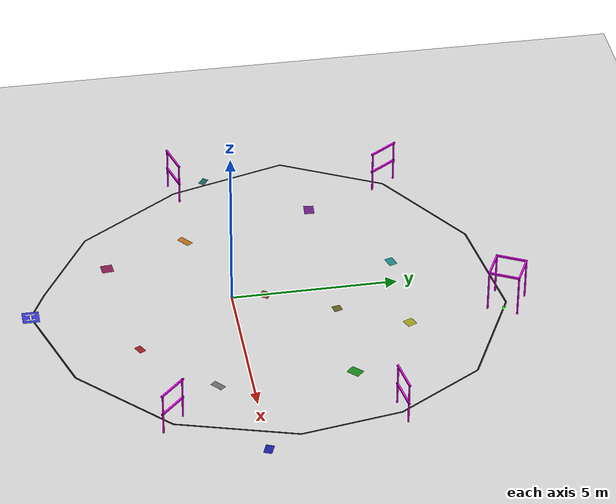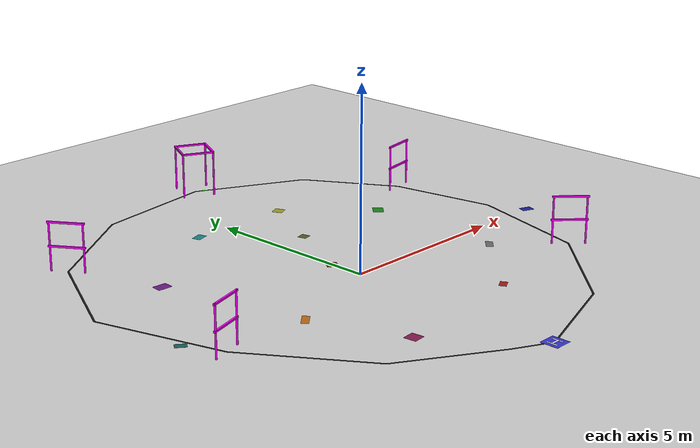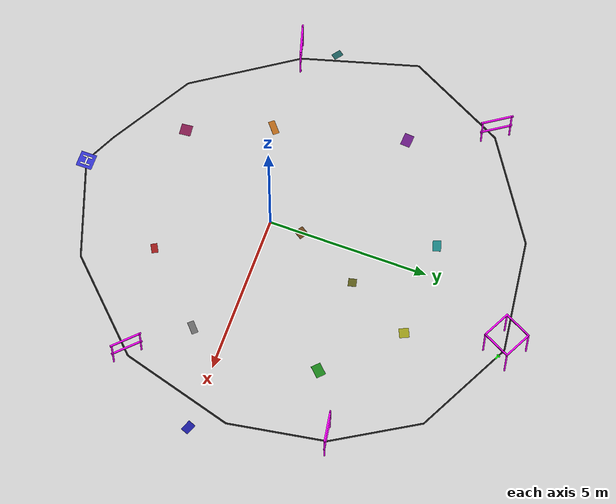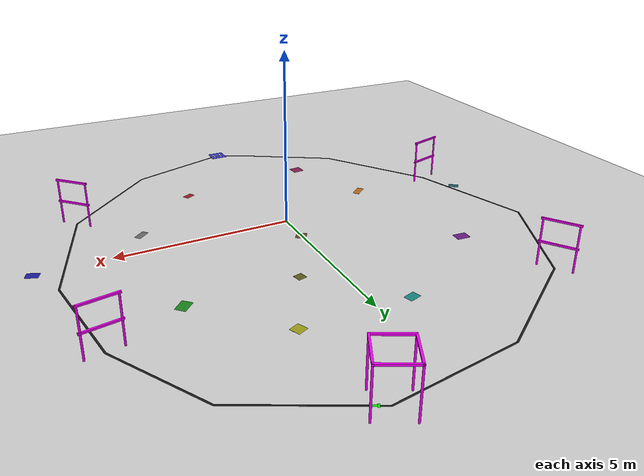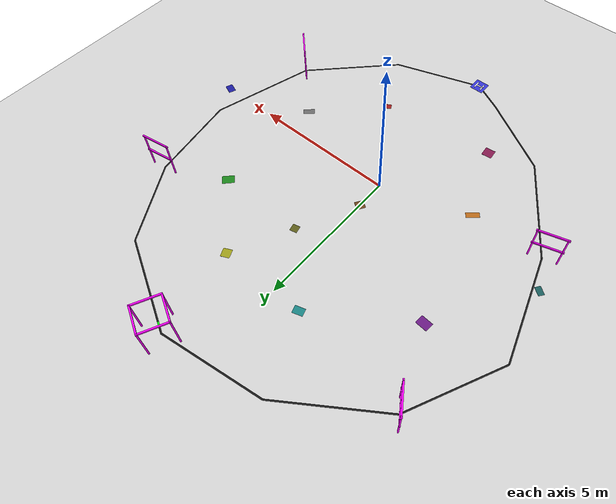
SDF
<?xml version="1.0" ?>
<sdf version="1.7">
  <world name="fira_autonomous_race">

    <plugin filename="gz-sim-physics-system" name="gz::sim::systems::Physics"/>
    <plugin filename="gz-sim-user-commands-system" name="gz::sim::systems::UserCommands"/>
    <plugin filename="gz-sim-scene-broadcaster-system" name="gz::sim::systems::SceneBroadcaster"/>
    <plugin filename="gz-sim-sensors-system" name="gz::sim::systems::Sensors">
      <render_engine>ogre2</render_engine>
    </plugin>

    <physics name="4ms" type="ode">
      <max_step_size>0.004</max_step_size>
      <real_time_factor>1.0</real_time_factor>
      <real_time_update_rate>250</real_time_update_rate>
    </physics>

    <scene>
      <ambient>0.8 0.8 0.8 1</ambient>
      <background>0.2 0.2 0.3 1</background>
      <shadows>true</shadows>
    </scene>

    <spherical_coordinates>
      <surface_model>EARTH_WGS84</surface_model>
      <world_frame_orientation>ENU</world_frame_orientation>
      <latitude_deg>0.0</latitude_deg>
      <longitude_deg>0.0</longitude_deg>
      <elevation>0.0</elevation>
      <heading_deg>0.0</heading_deg>
    </spherical_coordinates>

    <!-- Indoor arena lighting -->
    <light type="directional" name="overhead">
      <cast_shadows>true</cast_shadows>
      <pose>0 0 12 0 0 0</pose>
      <diffuse>0.85 0.85 0.85 1</diffuse>
      <specular>0.3 0.3 0.3 1</specular>
      <direction>-0.3 0.1 -0.9</direction>
    </light>

    <light type="point" name="fill_1">
      <pose>5 5 8 0 0 0</pose>
      <diffuse>0.6 0.6 0.6 1</diffuse>
      <attenuation><range>40</range><constant>0.5</constant></attenuation>
    </light>

    <light type="point" name="fill_2">
      <pose>-5 -5 8 0 0 0</pose>
      <diffuse>0.6 0.6 0.6 1</diffuse>
      <attenuation><range>40</range><constant>0.5</constant></attenuation>
    </light>

    <!-- Ground plane: light gray for high contrast with dark guide line -->
    <model name="ground_plane">
      <static>true</static>
      <link name="link">
        <collision name="collision">
          <geometry><plane><normal>0 0 1</normal><size>30 30</size></plane></geometry>
        </collision>
        <visual name="visual">
          <geometry><plane><normal>0 0 1</normal><size>30 30</size></plane></geometry>
          <material>
            <ambient>0.75 0.75 0.75 1</ambient>
            <diffuse>0.8 0.8 0.8 1</diffuse>
            <specular>0.2 0.2 0.2 1</specular>
          </material>
        </visual>
      </link>
    </model>

    <!-- TAKEOFF / LANDING PAD: 0.5x0.5m blue H           -->
    <!-- Position: (0, -6) at track start/finish           -->
    <model name="race_pad">
      <static>true</static>
      <pose>0 -6 0.005 0 0 0</pose>
      <link name="link">
        <visual name="pad_base">
          <geometry><box><size>0.5 0.5 0.002</size></box></geometry>
          <material><ambient>0.1 0.1 0.7 1</ambient><diffuse>0.2 0.2 0.8 1</diffuse></material>
        </visual>
        <visual name="h_left">
          <pose>-0.12 0 0.002 0 0 0</pose>
          <geometry><box><size>0.05 0.3 0.001</size></box></geometry>
          <material><ambient>1 1 1 1</ambient><diffuse>1 1 1 1</diffuse></material>
        </visual>
        <visual name="h_right">
          <pose>0.12 0 0.002 0 0 0</pose>
          <geometry><box><size>0.05 0.3 0.001</size></box></geometry>
          <material><ambient>1 1 1 1</ambient><diffuse>1 1 1 1</diffuse></material>
        </visual>
        <visual name="h_mid">
          <pose>0 0 0.002 0 0 0</pose>
          <geometry><box><size>0.3 0.05 0.001</size></box></geometry>
          <material><ambient>1 1 1 1</ambient><diffuse>1 1 1 1</diffuse></material>
        </visual>
        <collision name="col"><geometry><box><size>0.5 0.5 0.01</size></box></geometry></collision>
      </link>
    </model>

    <!-- GUIDE LINE: 5cm wide dark line on ground             -->
    <!-- 13 straight segments connecting track waypoints   -->

    <!-- Segment 0: P0(0,-6) -> P1(3,-5) -->
    <model name="gl_0">
      <static>true</static>
      <pose>1.5 -5.5 0.001 0 0 0.3217</pose>
      <link name="l"><visual name="v"><geometry><box><size>3.162 0.05 0.001</size></box></geometry>
        <material><ambient>0.05 0.05 0.05 1</ambient><diffuse>0.1 0.1 0.1 1</diffuse></material></visual></link>
    </model>

    <!-- Segment 1: P1(3,-5) -> P2(5.5,-2.5) -->
    <model name="gl_1">
      <static>true</static>
      <pose>4.25 -3.75 0.001 0 0 0.7854</pose>
      <link name="l"><visual name="v"><geometry><box><size>3.536 0.05 0.001</size></box></geometry>
        <material><ambient>0.05 0.05 0.05 1</ambient><diffuse>0.1 0.1 0.1 1</diffuse></material></visual></link>
    </model>

    <!-- Segment 2: P2(5.5,-2.5) -> P3(6.5,1) -->
    <model name="gl_2">
      <static>true</static>
      <pose>6.0 -0.75 0.001 0 0 1.2925</pose>
      <link name="l"><visual name="v"><geometry><box><size>3.640 0.05 0.001</size></box></geometry>
        <material><ambient>0.05 0.05 0.05 1</ambient><diffuse>0.1 0.1 0.1 1</diffuse></material></visual></link>
    </model>

    <!-- Segment 3: P3(6.5,1) -> P4(6,4) -->
    <model name="gl_3">
      <static>true</static>
      <pose>6.25 2.5 0.001 0 0 1.7359</pose>
      <link name="l"><visual name="v"><geometry><box><size>3.041 0.05 0.001</size></box></geometry>
        <material><ambient>0.05 0.05 0.05 1</ambient><diffuse>0.1 0.1 0.1 1</diffuse></material></visual></link>
    </model>

    <!-- Segment 4: P4(6,4) -> P5(4.5,6.5) -->
    <model name="gl_4">
      <static>true</static>
      <pose>5.25 5.25 0.001 0 0 2.1112</pose>
      <link name="l"><visual name="v"><geometry><box><size>2.915 0.05 0.001</size></box></geometry>
        <material><ambient>0.05 0.05 0.05 1</ambient><diffuse>0.1 0.1 0.1 1</diffuse></material></visual></link>
    </model>

    <!-- Segment 5: P5(4.5,6.5) -> P6(1.5,8) -->
    <model name="gl_5">
      <static>true</static>
      <pose>3.0 7.25 0.001 0 0 2.6779</pose>
      <link name="l"><visual name="v"><geometry><box><size>3.354 0.05 0.001</size></box></geometry>
        <material><ambient>0.05 0.05 0.05 1</ambient><diffuse>0.1 0.1 0.1 1</diffuse></material></visual></link>
    </model>

    <!-- Segment 6: P6(1.5,8) -> P7(-2,7.5) -->
    <model name="gl_6">
      <static>true</static>
      <pose>-0.25 7.75 0.001 0 0 -3.0002</pose>
      <link name="l"><visual name="v"><geometry><box><size>3.536 0.05 0.001</size></box></geometry>
        <material><ambient>0.05 0.05 0.05 1</ambient><diffuse>0.1 0.1 0.1 1</diffuse></material></visual></link>
    </model>

    <!-- Segment 7: P7(-2,7.5) -> P8(-5,5.5) -->
    <model name="gl_7">
      <static>true</static>
      <pose>-3.5 6.5 0.001 0 0 -2.5536</pose>
      <link name="l"><visual name="v"><geometry><box><size>3.606 0.05 0.001</size></box></geometry>
        <material><ambient>0.05 0.05 0.05 1</ambient><diffuse>0.1 0.1 0.1 1</diffuse></material></visual></link>
    </model>

    <!-- Segment 8: P8(-5,5.5) -> P9(-6.5,2.5) -->
    <model name="gl_8">
      <static>true</static>
      <pose>-5.75 4.0 0.001 0 0 -2.0344</pose>
      <link name="l"><visual name="v"><geometry><box><size>3.354 0.05 0.001</size></box></geometry>
        <material><ambient>0.05 0.05 0.05 1</ambient><diffuse>0.1 0.1 0.1 1</diffuse></material></visual></link>
    </model>

    <!-- Segment 9: P9(-6.5,2.5) -> P10(-5.5,-1) -->
    <model name="gl_9">
      <static>true</static>
      <pose>-6.0 0.75 0.001 0 0 -1.2925</pose>
      <link name="l"><visual name="v"><geometry><box><size>3.640 0.05 0.001</size></box></geometry>
        <material><ambient>0.05 0.05 0.05 1</ambient><diffuse>0.1 0.1 0.1 1</diffuse></material></visual></link>
    </model>

    <!-- Segment 10: P10(-5.5,-1) -> P11(-3.5,-4) -->
    <model name="gl_10">
      <static>true</static>
      <pose>-4.5 -2.5 0.001 0 0 -0.9828</pose>
      <link name="l"><visual name="v"><geometry><box><size>3.606 0.05 0.001</size></box></geometry>
        <material><ambient>0.05 0.05 0.05 1</ambient><diffuse>0.1 0.1 0.1 1</diffuse></material></visual></link>
    </model>

    <!-- Segment 11: P11(-3.5,-4) -> P12(-1,-5.5) -->
    <model name="gl_11">
      <static>true</static>
      <pose>-2.25 -4.75 0.001 0 0 -0.5404</pose>
      <link name="l"><visual name="v"><geometry><box><size>2.915 0.05 0.001</size></box></geometry>
        <material><ambient>0.05 0.05 0.05 1</ambient><diffuse>0.1 0.1 0.1 1</diffuse></material></visual></link>
    </model>

    <!-- Segment 12: P12(-1,-5.5) -> P0(0,-6) closing the loop -->
    <model name="gl_12">
      <static>true</static>
      <pose>-0.5 -5.75 0.001 0 0 -0.4636</pose>
      <link name="l"><visual name="v"><geometry><box><size>1.118 0.05 0.001</size></box></geometry>
        <material><ambient>0.05 0.05 0.05 1</ambient><diffuse>0.1 0.1 0.1 1</diffuse></material></visual></link>
    </model>

    <!-- RACE GATES (Magenta) — FIRA spec compliant        -->
    <!-- Vertical: 2 posts + top/bottom bars               -->
    <!--   Frame: 1.0m W x 0.7m H, opening 0.9m x 0.6m   -->
    <!--   Post height (ground→frame): 0.65m               -->
    <!-- Horizontal: 4 posts + horizontal square frame     -->
    <!--   Posts: 0.9m x 0.9m, frame at 1.3m height        -->
    <!-- Gate yaw = approach direction (drone flies thru X) -->
    <!-- Min clearance between gates: >6m (rule: >2m)      -->

    <!-- GATE 1 (Vertical) at P2(5.5, -2.5), approach yaw 0.7854 rad (45 deg) -->
    <model name="gate_1">
      <static>true</static>
      <pose>5.5 -2.5 0 0 0 0.7854</pose>
      <link name="link">
        <visual name="post_l">
          <pose>0 0.45 0.675 0 0 0</pose>
          <geometry><cylinder><radius>0.025</radius><length>1.35</length></cylinder></geometry>
          <material><ambient>0.85 0.0 0.85 1</ambient><diffuse>1.0 0.0 1.0 1</diffuse></material>
        </visual>
        <visual name="post_r">
          <pose>0 -0.45 0.675 0 0 0</pose>
          <geometry><cylinder><radius>0.025</radius><length>1.35</length></cylinder></geometry>
          <material><ambient>0.85 0.0 0.85 1</ambient><diffuse>1.0 0.0 1.0 1</diffuse></material>
        </visual>
        <visual name="bar_top">
          <pose>0 0 1.325 0 0 0</pose>
          <geometry><box><size>0.05 1.0 0.05</size></box></geometry>
          <material><ambient>0.85 0.0 0.85 1</ambient><diffuse>1.0 0.0 1.0 1</diffuse></material>
        </visual>
        <visual name="bar_bot">
          <pose>0 0 0.675 0 0 0</pose>
          <geometry><box><size>0.05 1.0 0.05</size></box></geometry>
          <material><ambient>0.85 0.0 0.85 1</ambient><diffuse>1.0 0.0 1.0 1</diffuse></material>
        </visual>
        <collision name="post_l_col"><pose>0 0.45 0.675 0 0 0</pose><geometry><cylinder><radius>0.025</radius><length>1.35</length></cylinder></geometry></collision>
        <collision name="post_r_col"><pose>0 -0.45 0.675 0 0 0</pose><geometry><cylinder><radius>0.025</radius><length>1.35</length></cylinder></geometry></collision>
      </link>
    </model>

    <!-- GATE 2 (Vertical) at P4(6.0, 4.0), approach yaw 1.7359 rad (99 deg) -->
    <model name="gate_2">
      <static>true</static>
      <pose>6.0 4.0 0 0 0 1.7359</pose>
      <link name="link">
        <visual name="post_l">
          <pose>0 0.45 0.675 0 0 0</pose>
          <geometry><cylinder><radius>0.025</radius><length>1.35</length></cylinder></geometry>
          <material><ambient>0.85 0.0 0.85 1</ambient><diffuse>1.0 0.0 1.0 1</diffuse></material>
        </visual>
        <visual name="post_r">
          <pose>0 -0.45 0.675 0 0 0</pose>
          <geometry><cylinder><radius>0.025</radius><length>1.35</length></cylinder></geometry>
          <material><ambient>0.85 0.0 0.85 1</ambient><diffuse>1.0 0.0 1.0 1</diffuse></material>
        </visual>
        <visual name="bar_top">
          <pose>0 0 1.325 0 0 0</pose>
          <geometry><box><size>0.05 1.0 0.05</size></box></geometry>
          <material><ambient>0.85 0.0 0.85 1</ambient><diffuse>1.0 0.0 1.0 1</diffuse></material>
        </visual>
        <visual name="bar_bot">
          <pose>0 0 0.675 0 0 0</pose>
          <geometry><box><size>0.05 1.0 0.05</size></box></geometry>
          <material><ambient>0.85 0.0 0.85 1</ambient><diffuse>1.0 0.0 1.0 1</diffuse></material>
        </visual>
        <collision name="post_l_col"><pose>0 0.45 0.675 0 0 0</pose><geometry><cylinder><radius>0.025</radius><length>1.35</length></cylinder></geometry></collision>
        <collision name="post_r_col"><pose>0 -0.45 0.675 0 0 0</pose><geometry><cylinder><radius>0.025</radius><length>1.35</length></cylinder></geometry></collision>
      </link>
    </model>

    <!-- GATE 3 (Horizontal) at P6(1.5, 8.0), approach yaw 2.6779 rad (153 deg) -->
    <!-- 4 posts 0.9m x 0.9m square, horizontal frame at 1.3m; drone flies under -->
    <model name="gate_3">
      <static>true</static>
      <pose>1.5 8.0 0 0 0 2.6779</pose>
      <link name="link">
        <visual name="post_fl">
          <pose>0.45 0.45 0.65 0 0 0</pose>
          <geometry><cylinder><radius>0.025</radius><length>1.3</length></cylinder></geometry>
          <material><ambient>0.85 0.0 0.85 1</ambient><diffuse>1.0 0.0 1.0 1</diffuse></material>
        </visual>
        <visual name="post_fr">
          <pose>0.45 -0.45 0.65 0 0 0</pose>
          <geometry><cylinder><radius>0.025</radius><length>1.3</length></cylinder></geometry>
          <material><ambient>0.85 0.0 0.85 1</ambient><diffuse>1.0 0.0 1.0 1</diffuse></material>
        </visual>
        <visual name="post_bl">
          <pose>-0.45 0.45 0.65 0 0 0</pose>
          <geometry><cylinder><radius>0.025</radius><length>1.3</length></cylinder></geometry>
          <material><ambient>0.85 0.0 0.85 1</ambient><diffuse>1.0 0.0 1.0 1</diffuse></material>
        </visual>
        <visual name="post_br">
          <pose>-0.45 -0.45 0.65 0 0 0</pose>
          <geometry><cylinder><radius>0.025</radius><length>1.3</length></cylinder></geometry>
          <material><ambient>0.85 0.0 0.85 1</ambient><diffuse>1.0 0.0 1.0 1</diffuse></material>
        </visual>
        <visual name="frame_f">
          <pose>0.45 0 1.3 0 0 0</pose>
          <geometry><box><size>0.05 0.95 0.05</size></box></geometry>
          <material><ambient>0.85 0.0 0.85 1</ambient><diffuse>1.0 0.0 1.0 1</diffuse></material>
        </visual>
        <visual name="frame_b">
          <pose>-0.45 0 1.3 0 0 0</pose>
          <geometry><box><size>0.05 0.95 0.05</size></box></geometry>
          <material><ambient>0.85 0.0 0.85 1</ambient><diffuse>1.0 0.0 1.0 1</diffuse></material>
        </visual>
        <visual name="frame_l">
          <pose>0 0.45 1.3 0 0 0</pose>
          <geometry><box><size>0.95 0.05 0.05</size></box></geometry>
          <material><ambient>0.85 0.0 0.85 1</ambient><diffuse>1.0 0.0 1.0 1</diffuse></material>
        </visual>
        <visual name="frame_r">
          <pose>0 -0.45 1.3 0 0 0</pose>
          <geometry><box><size>0.95 0.05 0.05</size></box></geometry>
          <material><ambient>0.85 0.0 0.85 1</ambient><diffuse>1.0 0.0 1.0 1</diffuse></material>
        </visual>
        <collision name="post_fl_col"><pose>0.45 0.45 0.65 0 0 0</pose><geometry><cylinder><radius>0.025</radius><length>1.3</length></cylinder></geometry></collision>
        <collision name="post_fr_col"><pose>0.45 -0.45 0.65 0 0 0</pose><geometry><cylinder><radius>0.025</radius><length>1.3</length></cylinder></geometry></collision>
        <collision name="post_bl_col"><pose>-0.45 0.45 0.65 0 0 0</pose><geometry><cylinder><radius>0.025</radius><length>1.3</length></cylinder></geometry></collision>
        <collision name="post_br_col"><pose>-0.45 -0.45 0.65 0 0 0</pose><geometry><cylinder><radius>0.025</radius><length>1.3</length></cylinder></geometry></collision>
        <collision name="frame_f_col"><pose>0.45 0 1.3 0 0 0</pose><geometry><box><size>0.05 0.95 0.05</size></box></geometry></collision>
        <collision name="frame_b_col"><pose>-0.45 0 1.3 0 0 0</pose><geometry><box><size>0.05 0.95 0.05</size></box></geometry></collision>
        <collision name="frame_l_col"><pose>0 0.45 1.3 0 0 0</pose><geometry><box><size>0.95 0.05 0.05</size></box></geometry></collision>
        <collision name="frame_r_col"><pose>0 -0.45 1.3 0 0 0</pose><geometry><box><size>0.95 0.05 0.05</size></box></geometry></collision>
      </link>
    </model>

    <!-- GATE 4 (Vertical) at P8(-5.0, 5.5), approach yaw -2.5536 rad (214 deg) -->
    <model name="gate_4">
      <static>true</static>
      <pose>-5.0 5.5 0 0 0 -2.5536</pose>
      <link name="link">
        <visual name="post_l">
          <pose>0 0.45 0.675 0 0 0</pose>
          <geometry><cylinder><radius>0.025</radius><length>1.35</length></cylinder></geometry>
          <material><ambient>0.85 0.0 0.85 1</ambient><diffuse>1.0 0.0 1.0 1</diffuse></material>
        </visual>
        <visual name="post_r">
          <pose>0 -0.45 0.675 0 0 0</pose>
          <geometry><cylinder><radius>0.025</radius><length>1.35</length></cylinder></geometry>
          <material><ambient>0.85 0.0 0.85 1</ambient><diffuse>1.0 0.0 1.0 1</diffuse></material>
        </visual>
        <visual name="bar_top">
          <pose>0 0 1.325 0 0 0</pose>
          <geometry><box><size>0.05 1.0 0.05</size></box></geometry>
          <material><ambient>0.85 0.0 0.85 1</ambient><diffuse>1.0 0.0 1.0 1</diffuse></material>
        </visual>
        <visual name="bar_bot">
          <pose>0 0 0.675 0 0 0</pose>
          <geometry><box><size>0.05 1.0 0.05</size></box></geometry>
          <material><ambient>0.85 0.0 0.85 1</ambient><diffuse>1.0 0.0 1.0 1</diffuse></material>
        </visual>
        <collision name="post_l_col"><pose>0 0.45 0.675 0 0 0</pose><geometry><cylinder><radius>0.025</radius><length>1.35</length></cylinder></geometry></collision>
        <collision name="post_r_col"><pose>0 -0.45 0.675 0 0 0</pose><geometry><cylinder><radius>0.025</radius><length>1.35</length></cylinder></geometry></collision>
      </link>
    </model>

    <!-- GATE 5 (Vertical) at P10(-5.5, -1.0), approach yaw -1.2925 rad (-74 deg) -->
    <model name="gate_5">
      <static>true</static>
      <pose>-5.5 -1.0 0 0 0 -1.2925</pose>
      <link name="link">
        <visual name="post_l">
          <pose>0 0.45 0.675 0 0 0</pose>
          <geometry><cylinder><radius>0.025</radius><length>1.35</length></cylinder></geometry>
          <material><ambient>0.85 0.0 0.85 1</ambient><diffuse>1.0 0.0 1.0 1</diffuse></material>
        </visual>
        <visual name="post_r">
          <pose>0 -0.45 0.675 0 0 0</pose>
          <geometry><cylinder><radius>0.025</radius><length>1.35</length></cylinder></geometry>
          <material><ambient>0.85 0.0 0.85 1</ambient><diffuse>1.0 0.0 1.0 1</diffuse></material>
        </visual>
        <visual name="bar_top">
          <pose>0 0 1.325 0 0 0</pose>
          <geometry><box><size>0.05 1.0 0.05</size></box></geometry>
          <material><ambient>0.85 0.0 0.85 1</ambient><diffuse>1.0 0.0 1.0 1</diffuse></material>
        </visual>
        <visual name="bar_bot">
          <pose>0 0 0.675 0 0 0</pose>
          <geometry><box><size>0.05 1.0 0.05</size></box></geometry>
          <material><ambient>0.85 0.0 0.85 1</ambient><diffuse>1.0 0.0 1.0 1</diffuse></material>
        </visual>
        <collision name="post_l_col"><pose>0 0.45 0.675 0 0 0</pose><geometry><cylinder><radius>0.025</radius><length>1.35</length></cylinder></geometry></collision>
        <collision name="post_r_col"><pose>0 -0.45 0.675 0 0 0</pose><geometry><cylinder><radius>0.025</radius><length>1.35</length></cylinder></geometry></collision>
      </link>
    </model>

    <!-- DIRECTION MARKERS (Green, max 20x20cm)            -->
    <!-- Placed on guide line, ≤50cm from nearest gate     -->
    <!-- point. Arrow shape (shaft + head) indicates the   -->
    <!-- correct approach direction for each gate.         -->
    <!-- To reverse race direction: rotate each marker     -->
    <!-- 180° (add π to yaw) and reposition to the        -->
    <!-- opposite side of its gate.                        -->

    <!-- Marker G3: 0.30m before Gate 3 (horizontal) along approach -->
    <model name="marker_g3">
      <static>true</static>
      <pose>1.768 7.866 0.003 0 0 2.6779</pose>
      <link name="link">
        <visual name="shaft">
          <pose>-0.03 0 0 0 0 0</pose>
          <geometry><box><size>0.12 0.05 0.001</size></box></geometry>
          <material><ambient>0.0 0.75 0.0 1</ambient><diffuse>0.0 0.95 0.0 1</diffuse></material>
        </visual>
        <visual name="head">
          <pose>0.055 0 0 0 0 0</pose>
          <geometry><box><size>0.05 0.11 0.001</size></box></geometry>
          <material><ambient>0.0 0.75 0.0 1</ambient><diffuse>0.0 0.95 0.0 1</diffuse></material>
        </visual>
      </link>
    </model>

    <!-- OPTICAL FLOW TEXTURE PATCHES                      -->
    <!-- Scattered colored rectangles for visual odometry  -->
    <!-- (Rules: "random visual features on the ground")   -->

    <model name="tex_1"><static>true</static><pose>2.0 -3.0 0.0005 0 0 0.5</pose>
      <link name="l"><visual name="v"><geometry><box><size>0.3 0.2 0.001</size></box></geometry>
        <material><ambient>0.6 0.1 0.1 1</ambient><diffuse>0.6 0.1 0.1 1</diffuse></material></visual></link></model>

    <model name="tex_2"><static>true</static><pose>7.0 0.0 0.0005 0 0 1.2</pose>
      <link name="l"><visual name="v"><geometry><box><size>0.25 0.35 0.001</size></box></geometry>
        <material><ambient>0.1 0.1 0.6 1</ambient><diffuse>0.1 0.1 0.6 1</diffuse></material></visual></link></model>

    <model name="tex_3"><static>true</static><pose>4.0 3.0 0.0005 0 0 0.8</pose>
      <link name="l"><visual name="v"><geometry><box><size>0.4 0.3 0.001</size></box></geometry>
        <material><ambient>0.1 0.5 0.1 1</ambient><diffuse>0.1 0.5 0.1 1</diffuse></material></visual></link></model>

    <model name="tex_4"><static>true</static><pose>2.0 5.0 0.0005 0 0 2.0</pose>
      <link name="l"><visual name="v"><geometry><box><size>0.3 0.3 0.001</size></box></geometry>
        <material><ambient>0.6 0.6 0.1 1</ambient><diffuse>0.6 0.6 0.1 1</diffuse></material></visual></link></model>

    <model name="tex_5"><static>true</static><pose>-1.0 5.0 0.0005 0 0 0.3</pose>
      <link name="l"><visual name="v"><geometry><box><size>0.35 0.25 0.001</size></box></geometry>
        <material><ambient>0.1 0.5 0.5 1</ambient><diffuse>0.1 0.5 0.5 1</diffuse></material></visual></link></model>

    <model name="tex_6"><static>true</static><pose>-4.0 3.0 0.0005 0 0 1.5</pose>
      <link name="l"><visual name="v"><geometry><box><size>0.3 0.4 0.001</size></box></geometry>
        <material><ambient>0.4 0.1 0.5 1</ambient><diffuse>0.4 0.1 0.5 1</diffuse></material></visual></link></model>

    <model name="tex_7"><static>true</static><pose>-3.0 -1.0 0.0005 0 0 0.7</pose>
      <link name="l"><visual name="v"><geometry><box><size>0.45 0.2 0.001</size></box></geometry>
        <material><ambient>0.7 0.4 0.1 1</ambient><diffuse>0.7 0.4 0.1 1</diffuse></material></visual></link></model>

    <model name="tex_8"><static>true</static><pose>0.0 1.0 0.0005 0 0 1.0</pose>
      <link name="l"><visual name="v"><geometry><box><size>0.3 0.3 0.001</size></box></geometry>
        <material><ambient>0.4 0.25 0.1 1</ambient><diffuse>0.4 0.25 0.1 1</diffuse></material></visual></link></model>

    <model name="tex_9"><static>true</static><pose>4.0 -1.0 0.0005 0 0 2.3</pose>
      <link name="l"><visual name="v"><geometry><box><size>0.2 0.4 0.001</size></box></geometry>
        <material><ambient>0.4 0.4 0.4 1</ambient><diffuse>0.4 0.4 0.4 1</diffuse></material></visual></link></model>

    <model name="tex_10"><static>true</static><pose>-2.0 -3.5 0.0005 0 0 0.1</pose>
      <link name="l"><visual name="v"><geometry><box><size>0.35 0.35 0.001</size></box></geometry>
        <material><ambient>0.5 0.1 0.3 1</ambient><diffuse>0.5 0.1 0.3 1</diffuse></material></visual></link></model>

    <model name="tex_11"><static>true</static><pose>1.0 3.0 0.0005 0 0 1.8</pose>
      <link name="l"><visual name="v"><geometry><box><size>0.25 0.25 0.001</size></box></geometry>
        <material><ambient>0.35 0.35 0.1 1</ambient><diffuse>0.35 0.35 0.1 1</diffuse></material></visual></link></model>

    <model name="tex_12"><static>true</static><pose>-6.0 0.0 0.0005 0 0 2.5</pose>
      <link name="l"><visual name="v"><geometry><box><size>0.3 0.2 0.001</size></box></geometry>
        <material><ambient>0.1 0.35 0.35 1</ambient><diffuse>0.1 0.35 0.35 1</diffuse></material></visual></link></model>

  </world>
</sdf>
